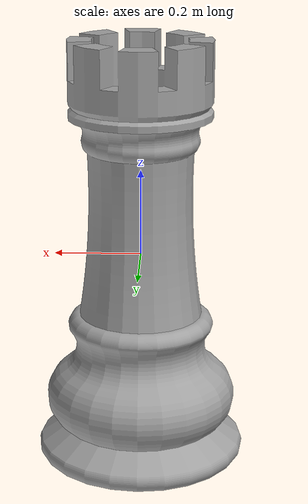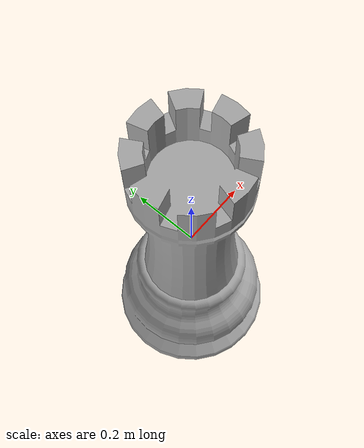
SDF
<?xml version="1.0" ?>
<sdf version="1.5">
  <model name='chess7'>
    <pose>0 0 0 0 0 0</pose>
    <static>1</static>
    <link name='body'>
      <collision name="chess7-coll">
        <pose>0 0 -0.5 0 0 0</pose>
        <geometry>
          <mesh>
            <uri>model://chess7/meshes/chess7.dae</uri>
          </mesh>
        </geometry>
      </collision>
      <visual name='chess7'>
        <cast_shadows>1</cast_shadows>
        <pose>0 0 -0.5 0 0 0</pose>
        <geometry>
          <mesh>
            <uri>model://chess7/meshes/chess7.dae</uri>
          </mesh>
        </geometry>
      </visual>
      <velocity_decay>
        <linear>0</linear>
        <angular>0</angular>
      </velocity_decay>
      <self_collide>0</self_collide>
      <kinematic>0</kinematic>
      <gravity>1</gravity>
    </link>
  </model>

</sdf>
